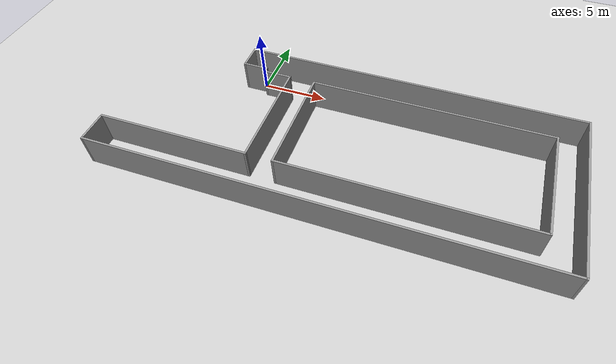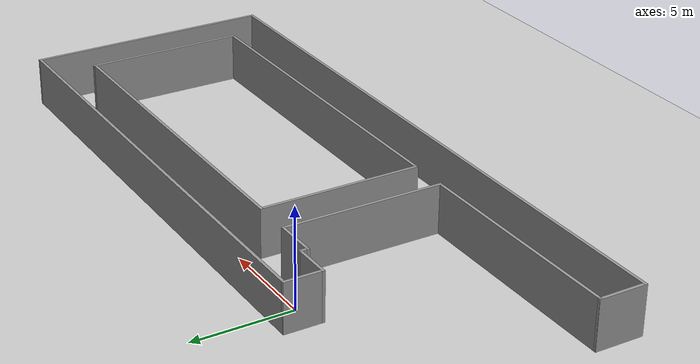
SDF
<sdf version="1.4">
 <world name="default">
  <light name="sun" type="directional">
   <pose>0 0 10 0 -0 0</pose>
   <diffuse>0.8 0.8 0.8 1</diffuse>
   <specular>0.2 0.2 0.2 1</specular>
   <attenuation>
    <range>1000</range>
    <constant>0.9</constant>
    <linear>0.01</linear>
    <quadratic>0.001</quadratic>
   </attenuation>
   <direction>-0.5 0.1 -0.9</direction>
  </light>
  <model name="ground_plane">
   <static>1</static>
   <link name="link">
    <collision name="collision">
     <geometry><plane><normal>0 0 1</normal><size>100 100</size></plane></geometry>
     <surface><friction><ode><mu>100</mu><mu2>50</mu2></ode></friction></surface>
    </collision>
    <visual name="visual">
     <cast_shadows>0</cast_shadows>
     <geometry><plane><normal>0 0 1</normal><size>100 100</size></plane></geometry>
     <material>
      <script><uri>file://media/materials/scripts/gazebo.material</uri><name>Gazebo/Grey</name></script>
     </material>
    </visual>
   </link>
  </model>
  <physics name="default_physics" default="0" type="ode">
   <max_step_size>0.001</max_step_size>
   <real_time_factor>1</real_time_factor>
   <real_time_update_rate>1000</real_time_update_rate>
   <gravity>0 0 -9.8</gravity>
  </physics>
  <scene><ambient>0.4 0.4 0.4 1</ambient><background>0.7 0.7 0.7 1</background><shadows>1</shadows></scene>
  <spherical_coordinates>
   <surface_model>EARTH_WGS84</surface_model>
   <latitude_deg>0</latitude_deg>
   <longitude_deg>0</longitude_deg>
   <elevation>0</elevation>
   <heading_deg>0</heading_deg>
  </spherical_coordinates>
  <model name="Wean4">
   <pose>8 -5 0 0 -0 0</pose>
   <link name="Wall_18">
    <collision name="Wall_18_Collision">
     <geometry><box><size>11.5 0.15 2.5</size></box></geometry>
     <pose>0 0 1.25 0 -0 0</pose>
    </collision>
    <visual name="Wall_18_Visual">
     <pose>0 0 1.25 0 -0 0</pose>
     <geometry><box><size>11.5 0.15 2.5</size></box></geometry>
     <material>
      <script><uri>file://media/materials/scripts/gazebo.material</uri><name>Gazebo/Grey</name></script>
      <ambient>1 1 1 1</ambient>
     </material>
    </visual>
    <pose>-11.075 -4.00009 0 0 -0 0</pose>
   </link>
   <link name="Wall_19">
    <collision name="Wall_19_Collision">
     <geometry><box><size>8.25 0.15 2.5</size></box></geometry>
     <pose>0 0 1.25 0 -0 0</pose>
    </collision>
    <visual name="Wall_19_Visual">
     <pose>0 0 1.25 0 -0 0</pose>
     <geometry><box><size>8.25 0.15 2.5</size></box></geometry>
     <material>
      <script><uri>file://media/materials/scripts/gazebo.material</uri><name>Gazebo/Grey</name></script>
      <ambient>1 1 1 1</ambient>
     </material>
    </visual>
    <pose>-5.40004 0.049907 0 0 -0 1.5708</pose>
   </link>
   <link name="Wall_20">
    <collision name="Wall_20_Collision">
     <geometry><box><size>2.25 0.15 2.5</size></box></geometry>
     <pose>0 0 1.25 0 -0 0</pose>
    </collision>
    <visual name="Wall_20_Visual">
     <pose>0 0 1.25 0 -0 0</pose>
     <geometry><box><size>2.25 0.15 2.5</size></box></geometry>
     <material>
      <script><uri>file://media/materials/scripts/gazebo.material</uri><name>Gazebo/Grey</name></script>
      <ambient>1 1 1 1</ambient>
     </material>
    </visual>
    <pose>-6.45004 4.09991 0 0 -0 3.14159</pose>
   </link>
   <link name="Wall_21">
    <collision name="Wall_21_Collision">
     <geometry><box><size>0.5 0.15 2.5</size></box></geometry>
     <pose>0 0 1.25 0 -0 0</pose>
    </collision>
    <visual name="Wall_21_Visual">
     <pose>0 0 1.25 0 -0 0</pose>
     <geometry><box><size>0.5 0.15 2.5</size></box></geometry>
     <material>
      <script><uri>file://media/materials/scripts/gazebo.material</uri><name>Gazebo/Grey</name></script>
      <ambient>1 1 1 1</ambient>
     </material>
    </visual>
    <pose>-7.50004 4.27491 0 0 -0 1.5708</pose>
   </link>
   <link name="Wall_22">
    <collision name="Wall_22_Collision">
     <geometry><box><size>2 0.15 2.5</size></box></geometry>
     <pose>0 0 1.25 0 -0 0</pose>
    </collision>
    <visual name="Wall_22_Visual">
     <pose>0 0 1.25 0 -0 0</pose>
     <geometry><box><size>2 0.15 2.5</size></box></geometry>
     <material>
      <script><uri>file://media/materials/scripts/gazebo.material</uri><name>Gazebo/Grey</name></script>
      <ambient>1 1 1 1</ambient>
     </material>
    </visual>
    <pose>-8.42504 4.44991 0 0 -0 3.14159</pose>
   </link>
   <link name="Wall_23">
    <collision name="Wall_23_Collision">
     <geometry><box><size>2 0.15 2.5</size></box></geometry>
     <pose>0 0 1.25 0 -0 0</pose>
    </collision>
    <visual name="Wall_23_Visual">
     <pose>0 0 1.25 0 -0 0</pose>
     <geometry><box><size>2 0.15 2.5</size></box></geometry>
     <material>
      <script><uri>file://media/materials/scripts/gazebo.material</uri><name>Gazebo/Grey</name></script>
      <ambient>1 1 1 1</ambient>
     </material>
    </visual>
    <pose>-9.35004 5.37491 0 0 -0 1.5708</pose>
   </link>
   <link name="Wall_26">
    <collision name="Wall_26_Collision">
     <geometry><box><size>26.25 0.15 2.5</size></box></geometry>
     <pose>0 0 1.25 0 -0 0</pose>
    </collision>
    <visual name="Wall_26_Visual">
     <pose>0 0 1.25 0 -0 0</pose>
     <geometry><box><size>26.25 0.15 2.5</size></box></geometry>
     <material>
      <script><uri>file://media/materials/scripts/gazebo.material</uri><name>Gazebo/Grey</name></script>
      <ambient>1 1 1 1</ambient>
     </material>
    </visual>
    <pose>3.69996 6.29991 0 0 -0 0</pose>
   </link>
   <link name="Wall_27">
    <collision name="Wall_27_Collision">
     <geometry><box><size>12.75 0.15 2.5</size></box></geometry>
     <pose>0 0 1.25 0 -0 0</pose>
    </collision>
    <visual name="Wall_27_Visual">
     <pose>0 0 1.25 0 -0 0</pose>
     <geometry><box><size>12.75 0.15 2.5</size></box></geometry>
     <material>
      <script><uri>file://media/materials/scripts/gazebo.material</uri><name>Gazebo/Grey</name></script>
      <ambient>1 1 1 1</ambient>
     </material>
    </visual>
    <pose>16.75 -0 0 0 0 -1.57079</pose>
   </link>
   <link name="Wall_28">
    <collision name="Wall_28_Collision">
     <geometry><box><size>33.65 0.15 2.5</size></box></geometry>
     <pose>0 0 1.25 0 -0 0</pose>
    </collision>
    <visual name="Wall_28_Visual">
     <pose>0 0 1.25 0 -0 0</pose>
     <geometry><box><size>33.65 0.15 2.5</size></box></geometry>
     <material>
      <script><uri>file://media/materials/scripts/gazebo.material</uri><name>Gazebo/Grey</name></script>
      <ambient>1 1 1 1</ambient>
     </material>
    </visual>
    <pose>4.5e-05 -6.29991 0 0 -0 3.14159</pose>
   </link>
   <link name="Wall_29">
    <collision name="Wall_29_Collision">
     <geometry><box><size>2.44982 0.15 2.5</size></box></geometry>
     <pose>0 0 1.25 0 -0 0</pose>
    </collision>
    <visual name="Wall_29_Visual">
     <pose>0 0 1.25 0 -0 0</pose>
     <geometry><box><size>2.44982 0.15 2.5</size></box></geometry>
     <material>
      <script><uri>file://media/materials/scripts/gazebo.material</uri><name>Gazebo/Grey</name></script>
      <ambient>1 1 1 1</ambient>
     </material>
    </visual>
    <pose>-16.75 -5.15 0 0 -0 1.57083</pose>
   </link>
   <link name="Wall_31">
    <collision name="Wall_31_Collision">
     <geometry><box><size>8.25 0.15 2.5</size></box></geometry>
     <pose>0 0 1.25 0 -0 0</pose>
    </collision>
    <visual name="Wall_31_Visual">
     <pose>0 0 1.25 0 -0 0</pose>
     <geometry><box><size>8.25 0.15 2.5</size></box></geometry>
     <material>
      <script><uri>file://media/materials/scripts/gazebo.material</uri><name>Gazebo/Grey</name></script>
      <ambient>1 1 1 1</ambient>
     </material>
    </visual>
    <pose>-3.40629 0.049907 0 0 -0 1.5708</pose>
   </link>
   <link name="Wall_32">
    <collision name="Wall_32_Collision">
     <geometry><box><size>18.1701 0.15 2.5</size></box></geometry>
     <pose>0 0 1.25 0 -0 0</pose>
    </collision>
    <visual name="Wall_32_Visual">
     <pose>0 0 1.25 0 -0 0</pose>
     <geometry><box><size>18.1701 0.15 2.5</size></box></geometry>
     <material>
      <script><uri>file://media/materials/scripts/gazebo.material</uri><name>Gazebo/Grey</name></script>
      <ambient>1 1 1 1</ambient>
     </material>
    </visual>
    <pose>5.60378 4.09991 0 0 -0 0</pose>
   </link>
   <link name="Wall_33">
    <collision name="Wall_33_Collision">
     <geometry><box><size>8.25 0.15 2.5</size></box></geometry>
     <pose>0 0 1.25 0 -0 0</pose>
    </collision>
    <visual name="Wall_33_Visual">
     <pose>0 0 1.25 0 -0 0</pose>
     <geometry><box><size>8.25 0.15 2.5</size></box></geometry>
     <material>
      <script><uri>file://media/materials/scripts/gazebo.material</uri><name>Gazebo/Grey</name></script>
      <ambient>1 1 1 1</ambient>
     </material>
    </visual>
    <pose>14.6381 0.074213 0 0 0 -1.5708</pose>
   </link>
   <link name="Wall_34">
    <collision name="Wall_34_Collision">
     <geometry><box><size>18.1701 0.15 2.5</size></box></geometry>
     <pose>0 0 1.25 0 -0 0</pose>
    </collision>
    <visual name="Wall_34_Visual">
     <pose>0 0 1.25 0 -0 0</pose>
     <geometry><box><size>18.1701 0.15 2.5</size></box></geometry>
     <material>
      <script><uri>file://media/materials/scripts/gazebo.material</uri><name>Gazebo/Grey</name></script>
      <ambient>1 1 1 1</ambient>
     </material>
    </visual>
    <pose>5.60378 -4.00009 0 0 -0 3.14159</pose>
   </link>
   <static>1</static>
  </model>
  <model name="battery_demo_model">
   <static>false</static>
   <link name="body"><battery name="brass_battery"><voltage>12.592</voltage></battery></link>
   <plugin name="battery" filename="libbattery_discharge.so">
    <ros_node>battery_monitor_client</ros_node>
    <link_name>body</link_name>
    <battery_name>brass_battery</battery_name>
    <constant_coef>12.694</constant_coef>
    <linear_coef>-3.1424</linear_coef>
    <initial_charge>1.1665</initial_charge>
    <capacity>1.2009</capacity>
    <resistance>0.061523</resistance>
    <smooth_current_tau>1.9499</smooth_current_tau>
    <charge_rate>2</charge_rate>
   </plugin>
   <plugin name="consumer" filename="libbattery_consumer.so">
    <ros_node>battery_monitor_client</ros_node>
    <link_name>body</link_name>
    <battery_name>brass_battery</battery_name>
    <power_load>6.6</power_load>
   </plugin>
  </model>
 </world>
</sdf>
